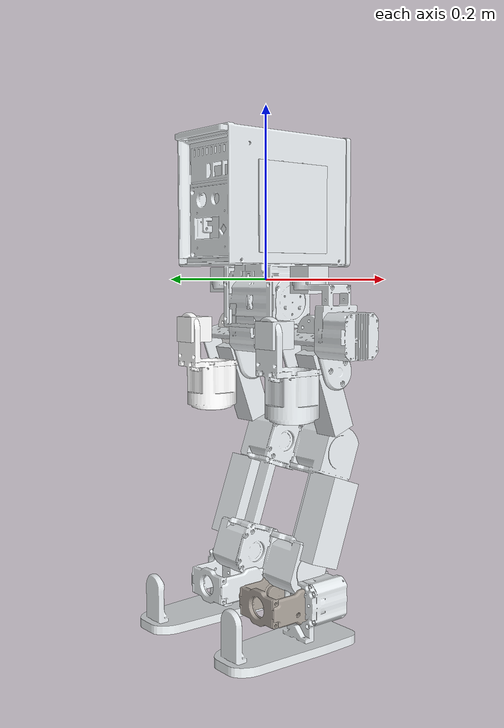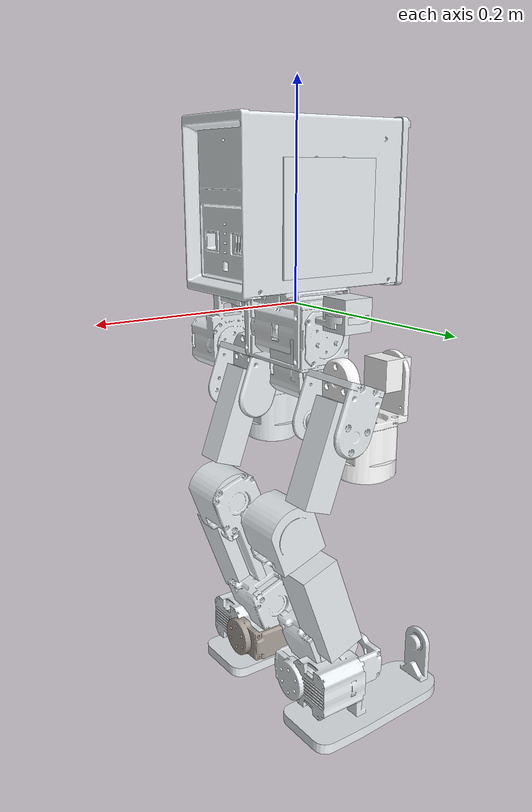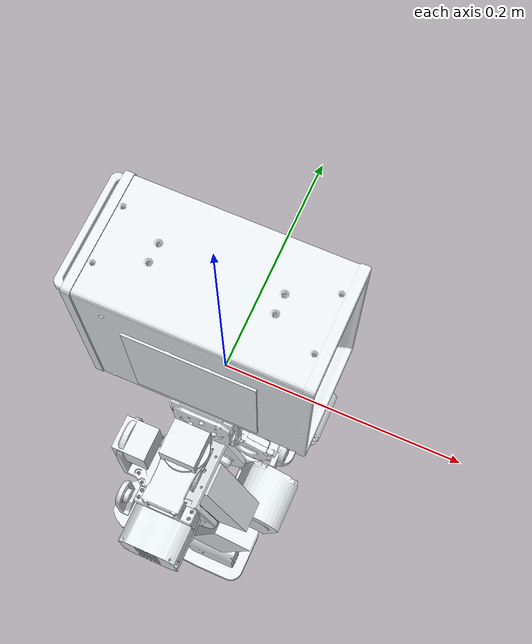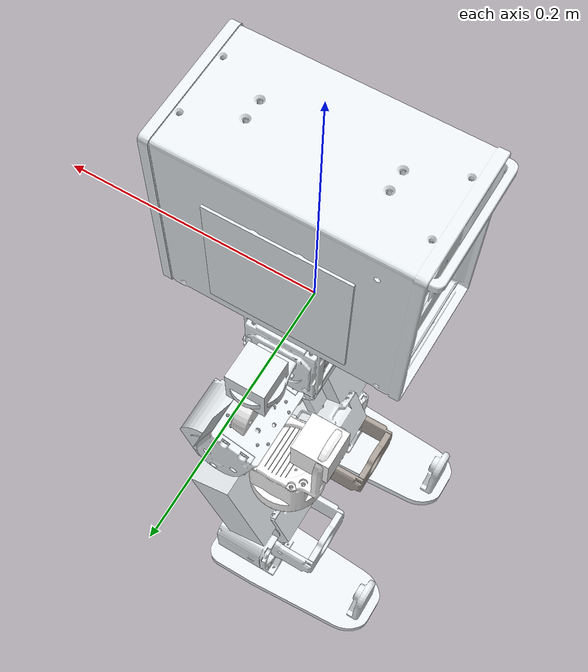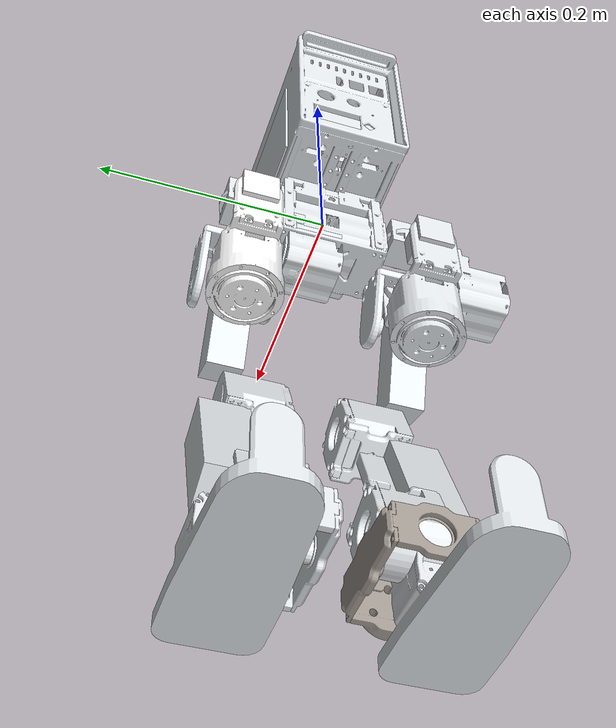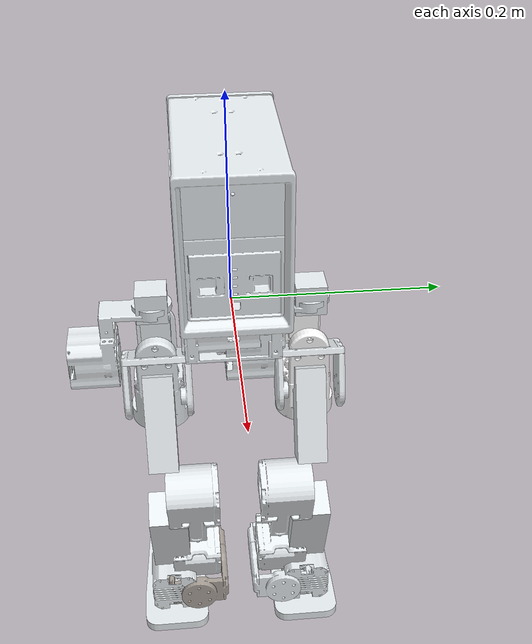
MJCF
<mujoco model="pi_parallel_12dof_release_v1">
  <compiler angle="radian" meshdir="../meshes/" autolimits="true"/>
  <statistic meansize="0.0917908" extent="0.709472" center="0.000893233 0.0024397 -0.117461"/>
  <asset>
    <mesh name="base_link" file="base_link.STL"/>
    <mesh name="r_hip_yaw_link" file="r_hip_yaw_link.STL"/>
    <mesh name="r_hip_roll_link" file="r_hip_roll_link.STL"/>
    <mesh name="r_thigh_link" file="r_thigh_link.STL"/>
    <mesh name="r_calf_link" file="r_calf_link.STL"/>
    <mesh name="r_ankle_pitch_link" file="r_ankle_pitch_link.STL"/>
    <mesh name="r_ankle_roll_link" file="r_ankle_roll_link.STL"/>
    <mesh name="l_hip_yaw_link" file="l_hip_yaw_link.STL"/>
    <mesh name="l_hip_roll_link" file="l_hip_roll_link.STL"/>
    <mesh name="l_thigh_link" file="l_thigh_link.STL"/>
    <mesh name="l_calf_link" file="l_calf_link.STL"/>
    <mesh name="l_ankle_pitch_link" file="l_ankle_pitch_link.STL"/>
    <mesh name="l_ankle_roll_link" file="l_ankle_roll_link.STL"/>
  </asset>
  <worldbody>
    <body name="base_link">
      <inertial pos="0.00431563 0.00011969 0.0706095" quat="0.999222 -0.0387769 0.00333012 -0.0063596" mass="2.4779" diaginertia="0.00983167 0.0079524 0.00758317"/>
      <joint name="base_link_free_joint" type="free"/>
      <geom type="mesh" contype="0" conaffinity="0" group="1" density="0" rgba="0.89804 0.91765 0.92941 1" mesh="base_link"/>
      <geom size="0.05 0.05 0.05" pos="0 0 0.08" type="box" rgba="0.89804 0.91765 0.92941 1"/>
      <body name="r_hip_yaw_link" pos="0 -0.075 0">
        <inertial pos="-0.0521311 0.00012202 -0.0527354" quat="0.962015 0.00675115 0.27155 0.0272313" mass="0.349538" diaginertia="0.000264257 0.000252453 0.000132199"/>
        <joint name="r_hip_yaw_joint" pos="0 0 0" axis="0 0 1" range="-0.8 0.8"/>
        <geom type="mesh" contype="0" conaffinity="0" group="1" density="0" rgba="0.89804 0.91765 0.92941 1" mesh="r_hip_yaw_link"/>
        <geom size="0.015 0.015 0.015" type="box" rgba="0.89804 0.91765 0.92941 1"/>
        <body name="r_hip_roll_link" pos="0 0 -0.059">
          <inertial pos="-0.00214086 0.00022682 -0.00016674" quat="0.502796 0.505088 -0.497459 0.494588" mass="0.674308" diaginertia="0.00101635 0.000989684 0.000316451"/>
          <joint name="r_hip_roll_joint" pos="0 0 0" axis="1 0 0" range="-0.5 0.157"/>
          <geom type="mesh" contype="0" conaffinity="0" group="1" density="0" rgba="0.89804 0.91765 0.92941 1" mesh="r_hip_roll_link"/>
          <geom size="0.015 0.015 0.015" pos="-0.05 0 0" type="box" rgba="0.89804 0.91765 0.92941 1"/>
          <body name="r_thigh_link" quat="0.984727 0 -0.174108 0">
            <inertial pos="0.00297238 -0.00090907 -0.080464" quat="0.501385 0.012222 -0.00689819 0.86511" mass="0.11783" diaginertia="0.000339454 0.000338484 2.51724e-05"/>
            <joint name="r_thigh_joint" pos="0 0 0" axis="0 1 0" range="-1.2 0.6"/>
            <geom type="mesh" contype="0" conaffinity="0" group="1" density="0" rgba="0.89804 0.91765 0.92941 1" mesh="r_thigh_link"/>
            <geom size="0.015 0.015 0.05" pos="0 0 -0.07" type="box" rgba="0.89804 0.91765 0.92941 1"/>
            <body name="r_calf_link" pos="0 0 -0.15" quat="0.939373 0 0.342898 0">
              <inertial pos="0.00199394 0 -0.0868848" quat="0.694774 0.0379399 -0.0267529 0.717728" mass="0.53091" diaginertia="0.000727466 0.000701949 0.000184555"/>
              <joint name="r_calf_joint" pos="0 0 0" axis="0 1 0" range="-0.7 1.6"/>
              <geom type="mesh" contype="0" conaffinity="0" group="1" density="0" rgba="0.89804 0.91765 0.92941 1" mesh="r_calf_link"/>
              <geom size="0.02 0.02 0.05" pos="0 0 -0.08" type="box" rgba="0.89804 0.91765 0.92941 1"/>
              <body name="r_ankle_pitch_link" pos="0 0 -0.17545" quat="0.984727 0 -0.174108 0">
                <inertial pos="0 0 0" quat="0 0.707107 0 0.707107" mass="0.0115844" diaginertia="1.21e-06 1.12e-06 4.5e-07"/>
                <joint name="r_ankle_pitch_joint" pos="0 0 0" axis="0 1 0" range="-0.3 0.85"/>
                <geom type="mesh" contype="0" conaffinity="0" group="1" density="0" rgba="0.65098 0.61961 0.58824 1" mesh="r_ankle_pitch_link"/>
                <geom type="mesh" rgba="0.65098 0.61961 0.58824 1" mesh="r_ankle_pitch_link"/>
                <body name="r_ankle_roll_link">
                  <inertial pos="0.016631 -2.06e-06 -0.021104" quat="8.74606e-05 0.728576 0.000120919 0.684965" mass="0.26606" diaginertia="0.000460774 0.00039542 0.000101916"/>
                  <joint name="r_ankle_roll_joint" pos="0 0 0" axis="1 0 0" range="-0.25 0.7"/>
                  <geom type="mesh" contype="0" conaffinity="0" group="1" density="0" rgba="0.89804 0.91765 0.92941 1" mesh="r_ankle_roll_link"/>
                  <geom type="mesh" rgba="0.89804 0.91765 0.92941 1" mesh="r_ankle_roll_link"/>
                </body>
              </body>
            </body>
          </body>
        </body>
      </body>
      <body name="l_hip_yaw_link" pos="0 0.075 0">
        <inertial pos="-0.0528778 -6.958e-05 -0.0528816" quat="0.964808 -0.00229227 0.262686 -0.011681" mass="0.349538" diaginertia="0.00026833 0.00025056 0.000131309"/>
        <joint name="l_hip_yaw_joint" pos="0 0 0" axis="0 0 1" range="-0.8 0.8"/>
        <geom type="mesh" contype="0" conaffinity="0" group="1" density="0" rgba="0.89804 0.91765 0.92941 1" mesh="l_hip_yaw_link"/>
        <geom size="0.015 0.015 0.015" type="box" rgba="0.89804 0.91765 0.92941 1"/>
        <body name="l_hip_roll_link" pos="0 0 -0.059">
          <inertial pos="-0.00198932 -0.00022682 -0.00016674" quat="0.504524 0.503309 -0.495176 0.496928" mass="0.674308" diaginertia="0.00104453 0.00101902 0.000325583"/>
          <joint name="l_hip_roll_joint" pos="0 0 0" axis="1 0 0" range="-0.157 0.5"/>
          <geom type="mesh" contype="0" conaffinity="0" group="1" density="0" rgba="1 1 1 1" mesh="l_hip_roll_link"/>
          <geom size="0.015 0.015 0.015" pos="-0.05 0 0" type="box" rgba="1 1 1 1"/>
          <body name="l_thigh_link" quat="0.984727 0 -0.174108 0">
            <inertial pos="0.00290507 0.00062807 -0.0786419" quat="0.83078 -0.00297303 0.00895681 0.55652" mass="0.12056" diaginertia="0.000357584 0.000356824 2.6282e-05"/>
            <joint name="l_thigh_joint" pos="0 0 0" axis="0 1 0" range="-1.2 0.6"/>
            <geom type="mesh" contype="0" conaffinity="0" group="1" density="0" rgba="0.89804 0.91765 0.92941 1" mesh="l_thigh_link"/>
            <geom size="0.015 0.015 0.05" pos="0 0 -0.07" type="box" rgba="0.89804 0.91765 0.92941 1"/>
            <body name="l_calf_link" pos="0 0 -0.15" quat="0.939373 0 0.342898 0">
              <inertial pos="0.00199394 0 -0.0868848" quat="0.717484 -0.022377 0.0339637 0.695387" mass="0.53091" diaginertia="0.000689511 0.000666148 0.000149971"/>
              <joint name="l_calf_joint" pos="0 0 0" axis="0 1 0" range="-0.7 1.6"/>
              <geom type="mesh" contype="0" conaffinity="0" group="1" density="0" rgba="0.89804 0.91765 0.92941 1" mesh="l_calf_link"/>
              <geom size="0.02 0.02 0.05" pos="0 0 -0.08" type="box" rgba="0.89804 0.91765 0.92941 1"/>
              <body name="l_ankle_pitch_link" pos="0 0 -0.17545" quat="0.984727 0 -0.174108 0">
                <inertial pos="0 0 0" quat="0 0.707107 0 0.707107" mass="0.0115844" diaginertia="1.21e-06 1.12e-06 4.5e-07"/>
                <joint name="l_ankle_pitch_joint" pos="0 0 0" axis="0 1 0" range="-0.3 0.85"/>
                <geom type="mesh" contype="0" conaffinity="0" group="1" density="0" rgba="0.89804 0.91765 0.92941 1" mesh="l_ankle_pitch_link"/>
                <geom type="mesh" rgba="0.89804 0.91765 0.92941 1" mesh="l_ankle_pitch_link"/>
                <body name="l_ankle_roll_link">
                  <inertial pos="0.016631 -2.06e-06 -0.021104" quat="-0.000101875 0.726707 -0.000110593 0.686947" mass="0.26319" diaginertia="0.000457156 0.00039075 0.000100764"/>
                  <joint name="l_ankle_roll_joint" pos="0 0 0" axis="1 0 0" range="-0.7 0.25"/>
                  <geom type="mesh" contype="0" conaffinity="0" group="1" density="0" rgba="0.89804 0.91765 0.92941 1" mesh="l_ankle_roll_link"/>
                  <geom type="mesh" rgba="0.89804 0.91765 0.92941 1" mesh="l_ankle_roll_link"/>
                </body>
              </body>
            </body>
          </body>
        </body>
      </body>
    </body>
  </worldbody>
</mujoco>
